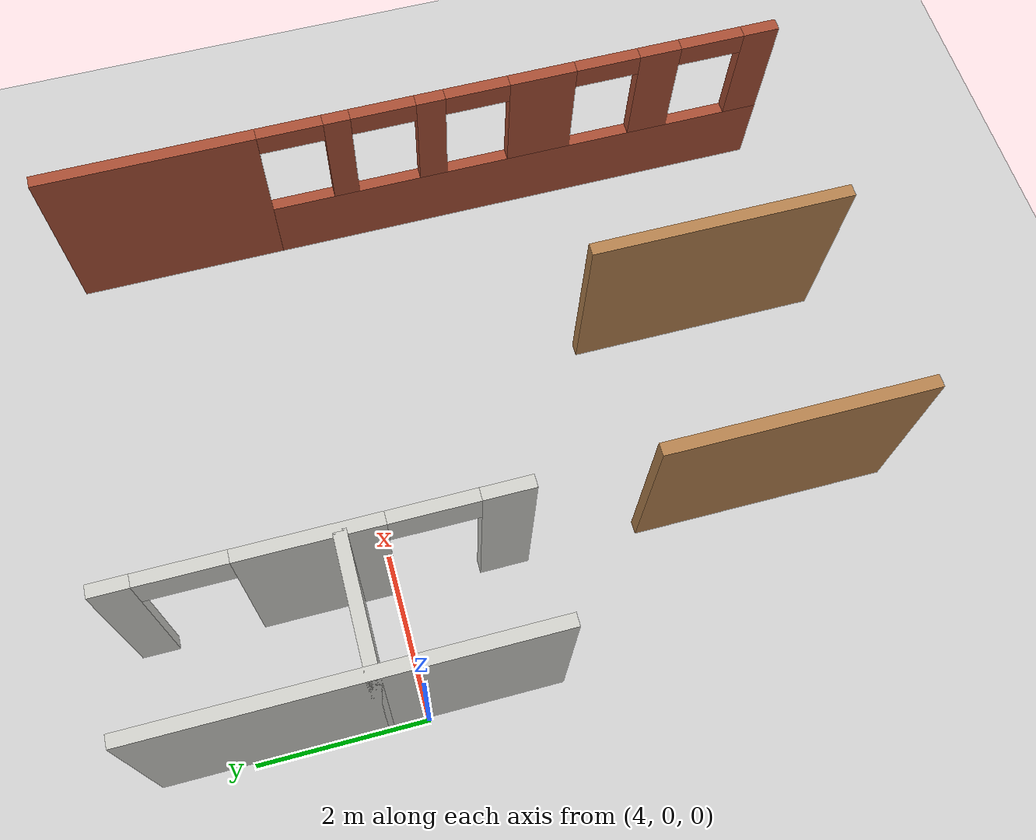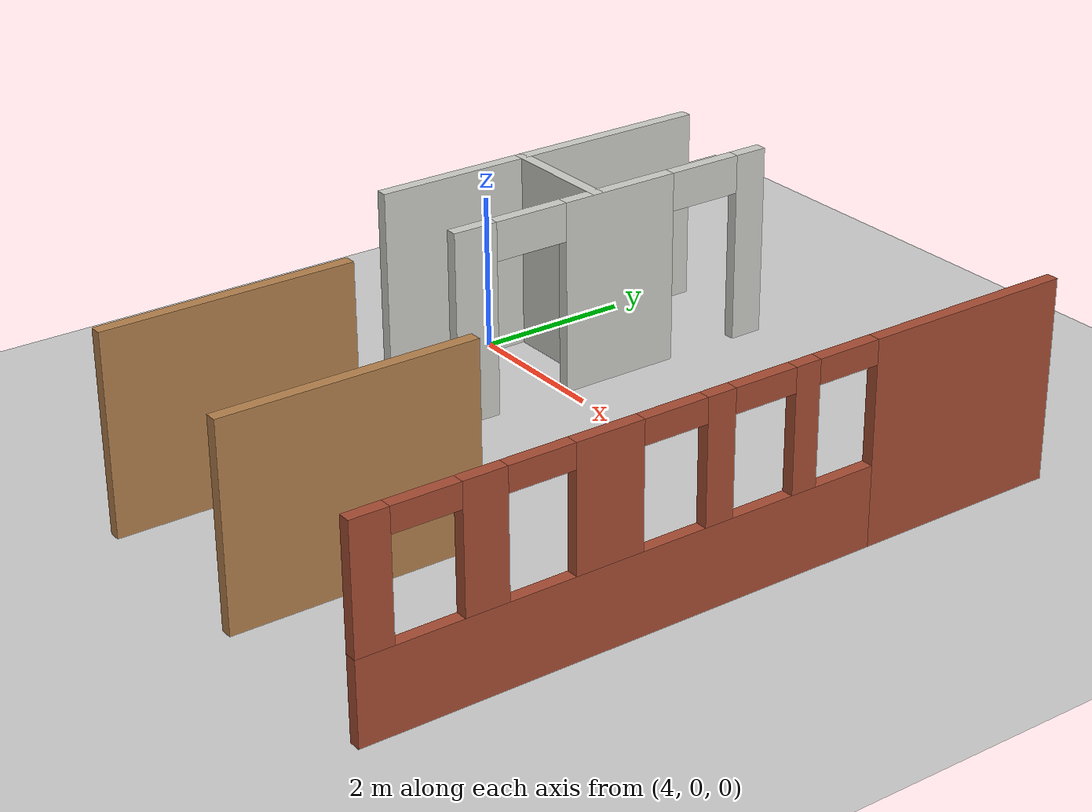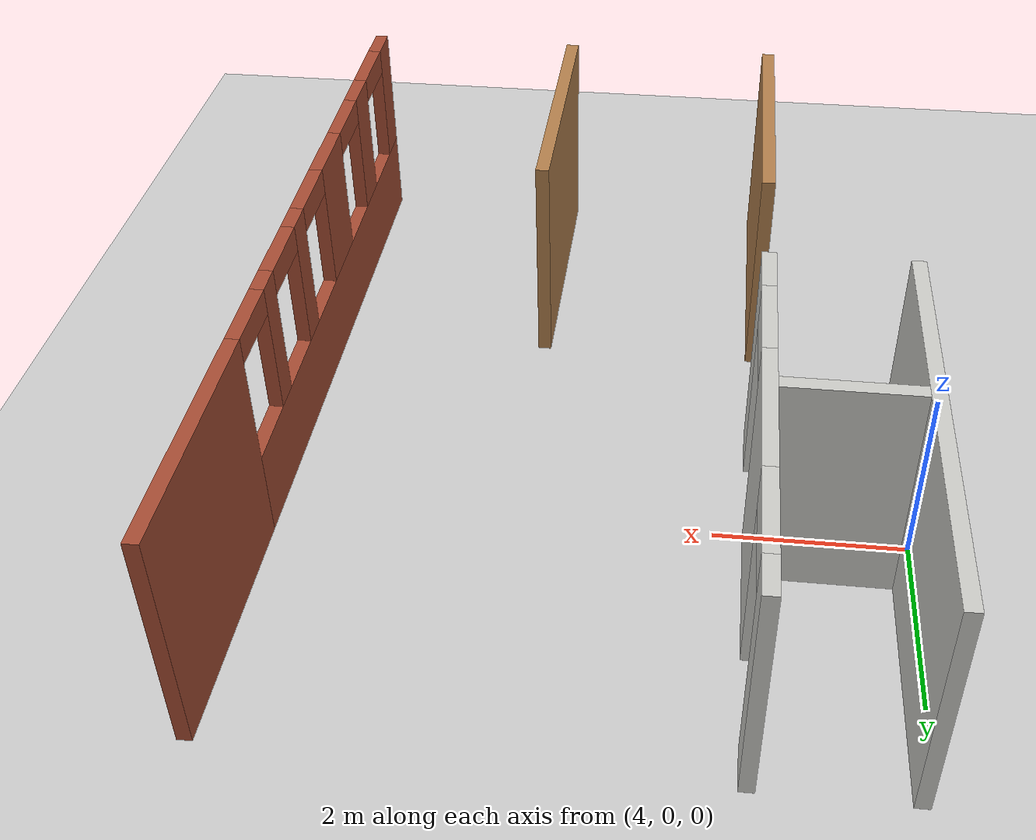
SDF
<sdf version="1.6">
 <world name="default">
  <model name="ground_plane">
   <static>1</static>
   <link name="link">
    <collision name="collision">
     <geometry><plane><normal>0 0 1</normal><size>100 100</size></plane></geometry>
     <surface><friction><ode><mu>100</mu><mu2>50</mu2></ode></friction></surface>
    </collision>
    <visual name="visual">
     <cast_shadows>0</cast_shadows>
     <geometry><plane><normal>0 0 1</normal><size>100 100</size></plane></geometry>
     <material>
      <script><uri>file://media/materials/scripts/gazebo.material</uri><name>Gazebo/Grey</name></script>
     </material>
    </visual>
   </link>
  </model>
  <model name="building">
   <link name="Wall_11">
    <pose>5 -3 0 0 0 -1.5708</pose>
    <visual name="Wall_11_Visual">
     <pose>0 0 1.25 0 -0 0</pose>
     <geometry><box><size>3.15 0.15 2.5</size></box></geometry>
     <material>
      <script><uri>file://media/materials/scripts/gazebo.material</uri><name>Gazebo/Wood</name></script>
      <ambient>0.435294 0.796078 0.67451 1</ambient>
      <shader type="pixel"/>
      <diffuse>1 1 1 1</diffuse>
      <specular>0.2 0.2 0.2 1</specular>
      <emissive>0 0 0 1</emissive>
     </material>
     <meta><layer>0</layer></meta>
    </visual>
    <collision name="Wall_11_Collision">
     <pose>0 0 1.25 0 -0 0</pose>
     <geometry><box><size>3.15 0.15 2.5</size></box></geometry>
     <surface>
      <friction>
       <ode><mu>1</mu><mu2>1</mu2><fdir1>0 0 0</fdir1><slip1>0</slip1><slip2>0</slip2></ode>
       <torsional>
        <coefficient>1</coefficient>
        <patch_radius>0</patch_radius>
        <surface_radius>0</surface_radius>
        <use_patch_radius>1</use_patch_radius>
        <ode><slip>0</slip></ode>
       </torsional>
      </friction>
      <bounce><restitution_coefficient>0</restitution_coefficient><threshold>1e+06</threshold></bounce>
      <contact>
       <collide_without_contact>0</collide_without_contact>
       <collide_without_contact_bitmask>1</collide_without_contact_bitmask>
       <collide_bitmask>1</collide_bitmask>
       <ode>
        <soft_cfm>0</soft_cfm>
        <soft_erp>0.2</soft_erp>
        <kp>1e+13</kp>
        <kd>1</kd>
        <max_vel>0.01</max_vel>
        <min_depth>0</min_depth>
       </ode>
       <bullet>
        <split_impulse>1</split_impulse>
        <split_impulse_penetration_threshold>-0.01</split_impulse_penetration_threshold>
        <soft_cfm>0</soft_cfm>
        <soft_erp>0.2</soft_erp>
        <kp>1e+13</kp>
        <kd>1</kd>
       </bullet>
      </contact>
     </surface>
    </collision>
   </link>
   <link name="Wall_13">
    <pose>2.5 -3 0 0 0 -1.5708</pose>
    <visual name="Wall_13_Visual">
     <pose>0 0 1.25 0 -0 0</pose>
     <geometry><box><size>3.15 0.15 2.5</size></box></geometry>
     <material>
      <script><uri>file://media/materials/scripts/gazebo.material</uri><name>Gazebo/Wood</name></script>
      <ambient>0.435294 0.796078 0.67451 1</ambient>
      <shader type="pixel"/>
      <diffuse>1 1 1 1</diffuse>
      <specular>0.2 0.2 0.2 1</specular>
      <emissive>0 0 0 1</emissive>
     </material>
     <meta><layer>0</layer></meta>
    </visual>
    <collision name="Wall_13_Collision">
     <pose>0 0 1.25 0 -0 0</pose>
     <geometry><box><size>3.15 0.15 2.5</size></box></geometry>
     <surface>
      <friction>
       <ode><mu>1</mu><mu2>1</mu2><fdir1>0 0 0</fdir1><slip1>0</slip1><slip2>0</slip2></ode>
       <torsional>
        <coefficient>1</coefficient>
        <patch_radius>0</patch_radius>
        <surface_radius>0</surface_radius>
        <use_patch_radius>1</use_patch_radius>
        <ode><slip>0</slip></ode>
       </torsional>
      </friction>
      <bounce><restitution_coefficient>0</restitution_coefficient><threshold>1e+06</threshold></bounce>
      <contact>
       <collide_without_contact>0</collide_without_contact>
       <collide_without_contact_bitmask>1</collide_without_contact_bitmask>
       <collide_bitmask>1</collide_bitmask>
       <ode>
        <soft_cfm>0</soft_cfm>
        <soft_erp>0.2</soft_erp>
        <kp>1e+13</kp>
        <kd>1</kd>
        <max_vel>0.01</max_vel>
        <min_depth>0</min_depth>
       </ode>
       <bullet>
        <split_impulse>1</split_impulse>
        <split_impulse_penetration_threshold>-0.01</split_impulse_penetration_threshold>
        <soft_cfm>0</soft_cfm>
        <soft_erp>0.2</soft_erp>
        <kp>1e+13</kp>
        <kd>1</kd>
       </bullet>
      </contact>
     </surface>
    </collision>
   </link>
   <link name="Wall_2">
    <pose>7.5 0 0 0 0 -1.5708</pose>
    <visual name="Wall_2_Visual_1">
     <pose>1.32605 0 0.5 0 -0 0</pose>
     <geometry><box><size>6.4979 0.15 1</size></box></geometry>
     <material>
      <script><uri>file://media/materials/scripts/gazebo.material</uri><name>Gazebo/Bricks</name></script>
      <ambient>0.996078 0.47451 0.0196078 1</ambient>
      <shader type="pixel"/>
      <diffuse>1 1 1 1</diffuse>
      <specular>0.2 0.2 0.2 1</specular>
      <emissive>0 0 0 1</emissive>
     </material>
     <meta><layer>0</layer></meta>
    </visual>
    <visual name="Wall_2_Visual_6">
     <pose>4.34943 0 1.75 0 -0 0</pose>
     <geometry><box><size>0.451131 0.15 1.5</size></box></geometry>
     <material>
      <script><uri>file://media/materials/scripts/gazebo.material</uri><name>Gazebo/Bricks</name></script>
      <ambient>0.996078 0.47451 0.0196078 1</ambient>
      <shader type="pixel"/>
      <diffuse>1 1 1 1</diffuse>
      <specular>0.2 0.2 0.2 1</specular>
      <emissive>0 0 0 1</emissive>
     </material>
     <meta><layer>0</layer></meta>
    </visual>
    <visual name="Wall_2_Visual_9">
     <pose>0.765409 0 2.35 0 -0 0</pose>
     <geometry><box><size>0.8 0.15 0.3</size></box></geometry>
     <material>
      <script><uri>file://media/materials/scripts/gazebo.material</uri><name>Gazebo/Bricks</name></script>
      <ambient>0.996078 0.47451 0.0196078 1</ambient>
      <shader type="pixel"/>
      <diffuse>1 1 1 1</diffuse>
      <specular>0.2 0.2 0.2 1</specular>
      <emissive>0 0 0 1</emissive>
     </material>
     <meta><layer>0</layer></meta>
    </visual>
    <visual name="Wall_2_Visual_8">
     <pose>-0.395093 0 2.35 0 -0 0</pose>
     <geometry><box><size>0.8 0.15 0.3</size></box></geometry>
     <material>
      <script><uri>file://media/materials/scripts/gazebo.material</uri><name>Gazebo/Bricks</name></script>
      <ambient>0.996078 0.47451 0.0196078 1</ambient>
      <shader type="pixel"/>
      <diffuse>1 1 1 1</diffuse>
      <specular>0.2 0.2 0.2 1</specular>
      <emissive>0 0 0 1</emissive>
     </material>
     <meta><layer>0</layer></meta>
    </visual>
    <visual name="Wall_2_Visual_10">
     <pose>2.39992 0 2.35 0 -0 0</pose>
     <geometry><box><size>0.8 0.15 0.3</size></box></geometry>
     <material>
      <script><uri>file://media/materials/scripts/gazebo.material</uri><name>Gazebo/Bricks</name></script>
      <ambient>0.996078 0.47451 0.0196078 1</ambient>
      <shader type="pixel"/>
      <diffuse>1 1 1 1</diffuse>
      <specular>0.2 0.2 0.2 1</specular>
      <emissive>0 0 0 1</emissive>
     </material>
     <meta><layer>0</layer></meta>
    </visual>
    <visual name="Wall_2_Visual_5">
     <pose>3.06189 0 1.75 0 -0 0</pose>
     <geometry><box><size>0.523952 0.15 1.5</size></box></geometry>
     <material>
      <script><uri>file://media/materials/scripts/gazebo.material</uri><name>Gazebo/Bricks</name></script>
      <ambient>0.996078 0.47451 0.0196078 1</ambient>
      <shader type="pixel"/>
      <diffuse>1 1 1 1</diffuse>
      <specular>0.2 0.2 0.2 1</specular>
      <emissive>0 0 0 1</emissive>
     </material>
     <meta><layer>0</layer></meta>
    </visual>
    <visual name="Wall_2_Visual_4">
     <pose>1.58266 0 1.75 0 -0 0</pose>
     <geometry><box><size>0.834509 0.15 1.5</size></box></geometry>
     <material>
      <script><uri>file://media/materials/scripts/gazebo.material</uri><name>Gazebo/Bricks</name></script>
      <ambient>0.996078 0.47451 0.0196078 1</ambient>
      <shader type="pixel"/>
      <diffuse>1 1 1 1</diffuse>
      <specular>0.2 0.2 0.2 1</specular>
      <emissive>0 0 0 1</emissive>
     </material>
     <meta><layer>0</layer></meta>
    </visual>
    <visual name="Wall_2_Visual_7">
     <pose>-1.5229 0 2.35 0 -0 0</pose>
     <geometry><box><size>0.8 0.15 0.3</size></box></geometry>
     <material>
      <script><uri>file://media/materials/scripts/gazebo.material</uri><name>Gazebo/Bricks</name></script>
      <ambient>0.996078 0.47451 0.0196078 1</ambient>
      <shader type="pixel"/>
      <diffuse>1 1 1 1</diffuse>
      <specular>0.2 0.2 0.2 1</specular>
      <emissive>0 0 0 1</emissive>
     </material>
     <meta><layer>0</layer></meta>
    </visual>
    <visual name="Wall_2_Visual_0">
     <pose>-3.24895 0 1.25 0 -0 0</pose>
     <geometry><box><size>2.6521 0.15 2.5</size></box></geometry>
     <material>
      <script><uri>file://media/materials/scripts/gazebo.material</uri><name>Gazebo/Bricks</name></script>
      <ambient>0.996078 0.47451 0.0196078 1</ambient>
      <shader type="pixel"/>
      <diffuse>1 1 1 1</diffuse>
      <specular>0.2 0.2 0.2 1</specular>
      <emissive>0 0 0 1</emissive>
     </material>
     <meta><layer>0</layer></meta>
    </visual>
    <visual name="Wall_2_Visual_3">
     <pose>0.185158 0 1.75 0 -0 0</pose>
     <geometry><box><size>0.360501 0.15 1.5</size></box></geometry>
     <material>
      <script><uri>file://media/materials/scripts/gazebo.material</uri><name>Gazebo/Bricks</name></script>
      <ambient>0.996078 0.47451 0.0196078 1</ambient>
      <shader type="pixel"/>
      <diffuse>1 1 1 1</diffuse>
      <specular>0.2 0.2 0.2 1</specular>
      <emissive>0 0 0 1</emissive>
     </material>
     <meta><layer>0</layer></meta>
    </visual>
    <visual name="Wall_2_Visual_2">
     <pose>-0.958999 0 1.75 0 -0 0</pose>
     <geometry><box><size>0.327811 0.15 1.5</size></box></geometry>
     <material>
      <script><uri>file://media/materials/scripts/gazebo.material</uri><name>Gazebo/Bricks</name></script>
      <ambient>0.996078 0.47451 0.0196078 1</ambient>
      <shader type="pixel"/>
      <diffuse>1 1 1 1</diffuse>
      <specular>0.2 0.2 0.2 1</specular>
      <emissive>0 0 0 1</emissive>
     </material>
     <meta><layer>0</layer></meta>
    </visual>
    <visual name="Wall_2_Visual_11">
     <pose>3.72387 0 2.35 0 -0 0</pose>
     <geometry><box><size>0.8 0.15 0.3</size></box></geometry>
     <material>
      <script><uri>file://media/materials/scripts/gazebo.material</uri><name>Gazebo/Bricks</name></script>
      <ambient>0.996078 0.47451 0.0196078 1</ambient>
      <shader type="pixel"/>
      <diffuse>1 1 1 1</diffuse>
      <specular>0.2 0.2 0.2 1</specular>
      <emissive>0 0 0 1</emissive>
     </material>
     <meta><layer>0</layer></meta>
    </visual>
    <collision name="Wall_2_Collision_5">
     <pose>3.06189 0 1.75 0 -0 0</pose>
     <geometry><box><size>0.523952 0.15 1.5</size></box></geometry>
     <surface>
      <friction>
       <ode><mu>1</mu><mu2>1</mu2><fdir1>0 0 0</fdir1><slip1>0</slip1><slip2>0</slip2></ode>
       <torsional>
        <coefficient>1</coefficient>
        <patch_radius>0</patch_radius>
        <surface_radius>0</surface_radius>
        <use_patch_radius>1</use_patch_radius>
        <ode><slip>0</slip></ode>
       </torsional>
      </friction>
      <bounce><restitution_coefficient>0</restitution_coefficient><threshold>1e+06</threshold></bounce>
      <contact>
       <collide_without_contact>0</collide_without_contact>
       <collide_without_contact_bitmask>1</collide_without_contact_bitmask>
       <collide_bitmask>1</collide_bitmask>
       <ode>
        <soft_cfm>0</soft_cfm>
        <soft_erp>0.2</soft_erp>
        <kp>1e+13</kp>
        <kd>1</kd>
        <max_vel>0.01</max_vel>
        <min_depth>0</min_depth>
       </ode>
       <bullet>
        <split_impulse>1</split_impulse>
        <split_impulse_penetration_threshold>-0.01</split_impulse_penetration_threshold>
        <soft_cfm>0</soft_cfm>
        <soft_erp>0.2</soft_erp>
        <kp>1e+13</kp>
        <kd>1</kd>
       </bullet>
      </contact>
     </surface>
    </collision>
    <collision name="Wall_2_Collision_9">
     <pose>0.765409 0 2.35 0 -0 0</pose>
     <geometry><box><size>0.8 0.15 0.3</size></box></geometry>
     <surface>
      <friction>
       <ode><mu>1</mu><mu2>1</mu2><fdir1>0 0 0</fdir1><slip1>0</slip1><slip2>0</slip2></ode>
       <torsional>
        <coefficient>1</coefficient>
        <patch_radius>0</patch_radius>
        <surface_radius>0</surface_radius>
        <use_patch_radius>1</use_patch_radius>
        <ode><slip>0</slip></ode>
       </torsional>
      </friction>
      <bounce><restitution_coefficient>0</restitution_coefficient><threshold>1e+06</threshold></bounce>
      <contact>
       <collide_without_contact>0</collide_without_contact>
       <collide_without_contact_bitmask>1</collide_without_contact_bitmask>
       <collide_bitmask>1</collide_bitmask>
       <ode>
        <soft_cfm>0</soft_cfm>
        <soft_erp>0.2</soft_erp>
        <kp>1e+13</kp>
        <kd>1</kd>
        <max_vel>0.01</max_vel>
        <min_depth>0</min_depth>
       </ode>
       <bullet>
        <split_impulse>1</split_impulse>
        <split_impulse_penetration_threshold>-0.01</split_impulse_penetration_threshold>
        <soft_cfm>0</soft_cfm>
        <soft_erp>0.2</soft_erp>
        <kp>1e+13</kp>
        <kd>1</kd>
       </bullet>
      </contact>
     </surface>
    </collision>
    <collision name="Wall_2_Collision_8">
     <pose>-0.395093 0 2.35 0 -0 0</pose>
     <geometry><box><size>0.8 0.15 0.3</size></box></geometry>
     <surface>
      <friction>
       <ode><mu>1</mu><mu2>1</mu2><fdir1>0 0 0</fdir1><slip1>0</slip1><slip2>0</slip2></ode>
       <torsional>
        <coefficient>1</coefficient>
        <patch_radius>0</patch_radius>
        <surface_radius>0</surface_radius>
        <use_patch_radius>1</use_patch_radius>
        <ode><slip>0</slip></ode>
       </torsional>
      </friction>
      <bounce><restitution_coefficient>0</restitution_coefficient><threshold>1e+06</threshold></bounce>
      <contact>
       <collide_without_contact>0</collide_without_contact>
       <collide_without_contact_bitmask>1</collide_without_contact_bitmask>
       <collide_bitmask>1</collide_bitmask>
       <ode>
        <soft_cfm>0</soft_cfm>
        <soft_erp>0.2</soft_erp>
        <kp>1e+13</kp>
        <kd>1</kd>
        <max_vel>0.01</max_vel>
        <min_depth>0</min_depth>
       </ode>
       <bullet>
        <split_impulse>1</split_impulse>
        <split_impulse_penetration_threshold>-0.01</split_impulse_penetration_threshold>
        <soft_cfm>0</soft_cfm>
        <soft_erp>0.2</soft_erp>
        <kp>1e+13</kp>
        <kd>1</kd>
       </bullet>
      </contact>
     </surface>
    </collision>
    <collision name="Wall_2_Collision_0">
     <pose>-3.24895 0 1.25 0 -0 0</pose>
     <geometry><box><size>2.6521 0.15 2.5</size></box></geometry>
     <surface>
      <friction>
       <ode><mu>1</mu><mu2>1</mu2><fdir1>0 0 0</fdir1><slip1>0</slip1><slip2>0</slip2></ode>
       <torsional>
        <coefficient>1</coefficient>
        <patch_radius>0</patch_radius>
        <surface_radius>0</surface_radius>
        <use_patch_radius>1</use_patch_radius>
        <ode><slip>0</slip></ode>
       </torsional>
      </friction>
      <bounce><restitution_coefficient>0</restitution_coefficient><threshold>1e+06</threshold></bounce>
      <contact>
       <collide_without_contact>0</collide_without_contact>
       <collide_without_contact_bitmask>1</collide_without_contact_bitmask>
       <collide_bitmask>1</collide_bitmask>
       <ode>
        <soft_cfm>0</soft_cfm>
        <soft_erp>0.2</soft_erp>
        <kp>1e+13</kp>
        <kd>1</kd>
        <max_vel>0.01</max_vel>
        <min_depth>0</min_depth>
       </ode>
       <bullet>
        <split_impulse>1</split_impulse>
        <split_impulse_penetration_threshold>-0.01</split_impulse_penetration_threshold>
        <soft_cfm>0</soft_cfm>
        <soft_erp>0.2</soft_erp>
        <kp>1e+13</kp>
        <kd>1</kd>
       </bullet>
      </contact>
     </surface>
    </collision>
    <collision name="Wall_2_Collision_6">
     <pose>4.34943 0 1.75 0 -0 0</pose>
     <geometry><box><size>0.451131 0.15 1.5</size></box></geometry>
     <surface>
      <friction>
       <ode><mu>1</mu><mu2>1</mu2><fdir1>0 0 0</fdir1><slip1>0</slip1><slip2>0</slip2></ode>
       <torsional>
        <coefficient>1</coefficient>
        <patch_radius>0</patch_radius>
        <surface_radius>0</surface_radius>
        <use_patch_radius>1</use_patch_radius>
        <ode><slip>0</slip></ode>
       </torsional>
      </friction>
      <bounce><restitution_coefficient>0</restitution_coefficient><threshold>1e+06</threshold></bounce>
      <contact>
       <collide_without_contact>0</collide_without_contact>
       <collide_without_contact_bitmask>1</collide_without_contact_bitmask>
       <collide_bitmask>1</collide_bitmask>
       <ode>
        <soft_cfm>0</soft_cfm>
        <soft_erp>0.2</soft_erp>
        <kp>1e+13</kp>
        <kd>1</kd>
        <max_vel>0.01</max_vel>
        <min_depth>0</min_depth>
       </ode>
       <bullet>
        <split_impulse>1</split_impulse>
        <split_impulse_penetration_threshold>-0.01</split_impulse_penetration_threshold>
        <soft_cfm>0</soft_cfm>
        <soft_erp>0.2</soft_erp>
        <kp>1e+13</kp>
        <kd>1</kd>
       </bullet>
      </contact>
     </surface>
    </collision>
    <collision name="Wall_2_Collision_7">
     <pose>-1.5229 0 2.35 0 -0 0</pose>
     <geometry><box><size>0.8 0.15 0.3</size></box></geometry>
     <surface>
      <friction>
       <ode><mu>1</mu><mu2>1</mu2><fdir1>0 0 0</fdir1><slip1>0</slip1><slip2>0</slip2></ode>
       <torsional>
        <coefficient>1</coefficient>
        <patch_radius>0</patch_radius>
        <surface_radius>0</surface_radius>
        <use_patch_radius>1</use_patch_radius>
        <ode><slip>0</slip></ode>
       </torsional>
      </friction>
      <bounce><restitution_coefficient>0</restitution_coefficient><threshold>1e+06</threshold></bounce>
      <contact>
       <collide_without_contact>0</collide_without_contact>
       <collide_without_contact_bitmask>1</collide_without_contact_bitmask>
       <collide_bitmask>1</collide_bitmask>
       <ode>
        <soft_cfm>0</soft_cfm>
        <soft_erp>0.2</soft_erp>
        <kp>1e+13</kp>
        <kd>1</kd>
        <max_vel>0.01</max_vel>
        <min_depth>0</min_depth>
       </ode>
       <bullet>
        <split_impulse>1</split_impulse>
        <split_impulse_penetration_threshold>-0.01</split_impulse_penetration_threshold>
        <soft_cfm>0</soft_cfm>
        <soft_erp>0.2</soft_erp>
        <kp>1e+13</kp>
        <kd>1</kd>
       </bullet>
      </contact>
     </surface>
    </collision>
    <collision name="Wall_2_Collision_11">
     <pose>3.72387 0 2.35 0 -0 0</pose>
     <geometry><box><size>0.8 0.15 0.3</size></box></geometry>
     <surface>
      <friction>
       <ode><mu>1</mu><mu2>1</mu2><fdir1>0 0 0</fdir1><slip1>0</slip1><slip2>0</slip2></ode>
       <torsional>
        <coefficient>1</coefficient>
        <patch_radius>0</patch_radius>
        <surface_radius>0</surface_radius>
        <use_patch_radius>1</use_patch_radius>
        <ode><slip>0</slip></ode>
       </torsional>
      </friction>
      <bounce><restitution_coefficient>0</restitution_coefficient><threshold>1e+06</threshold></bounce>
      <contact>
       <collide_without_contact>0</collide_without_contact>
       <collide_without_contact_bitmask>1</collide_without_contact_bitmask>
       <collide_bitmask>1</collide_bitmask>
       <ode>
        <soft_cfm>0</soft_cfm>
        <soft_erp>0.2</soft_erp>
        <kp>1e+13</kp>
        <kd>1</kd>
        <max_vel>0.01</max_vel>
        <min_depth>0</min_depth>
       </ode>
       <bullet>
        <split_impulse>1</split_impulse>
        <split_impulse_penetration_threshold>-0.01</split_impulse_penetration_threshold>
        <soft_cfm>0</soft_cfm>
        <soft_erp>0.2</soft_erp>
        <kp>1e+13</kp>
        <kd>1</kd>
       </bullet>
      </contact>
     </surface>
    </collision>
    <collision name="Wall_2_Collision_4">
     <pose>1.58266 0 1.75 0 -0 0</pose>
     <geometry><box><size>0.834509 0.15 1.5</size></box></geometry>
     <surface>
      <friction>
       <ode><mu>1</mu><mu2>1</mu2><fdir1>0 0 0</fdir1><slip1>0</slip1><slip2>0</slip2></ode>
       <torsional>
        <coefficient>1</coefficient>
        <patch_radius>0</patch_radius>
        <surface_radius>0</surface_radius>
        <use_patch_radius>1</use_patch_radius>
        <ode><slip>0</slip></ode>
       </torsional>
      </friction>
      <bounce><restitution_coefficient>0</restitution_coefficient><threshold>1e+06</threshold></bounce>
      <contact>
       <collide_without_contact>0</collide_without_contact>
       <collide_without_contact_bitmask>1</collide_without_contact_bitmask>
       <collide_bitmask>1</collide_bitmask>
       <ode>
        <soft_cfm>0</soft_cfm>
        <soft_erp>0.2</soft_erp>
        <kp>1e+13</kp>
        <kd>1</kd>
        <max_vel>0.01</max_vel>
        <min_depth>0</min_depth>
       </ode>
       <bullet>
        <split_impulse>1</split_impulse>
        <split_impulse_penetration_threshold>-0.01</split_impulse_penetration_threshold>
        <soft_cfm>0</soft_cfm>
        <soft_erp>0.2</soft_erp>
        <kp>1e+13</kp>
        <kd>1</kd>
       </bullet>
      </contact>
     </surface>
    </collision>
    <collision name="Wall_2_Collision_10">
     <pose>2.39992 0 2.35 0 -0 0</pose>
     <geometry><box><size>0.8 0.15 0.3</size></box></geometry>
     <surface>
      <friction>
       <ode><mu>1</mu><mu2>1</mu2><fdir1>0 0 0</fdir1><slip1>0</slip1><slip2>0</slip2></ode>
       <torsional>
        <coefficient>1</coefficient>
        <patch_radius>0</patch_radius>
        <surface_radius>0</surface_radius>
        <use_patch_radius>1</use_patch_radius>
        <ode><slip>0</slip></ode>
       </torsional>
      </friction>
      <bounce><restitution_coefficient>0</restitution_coefficient><threshold>1e+06</threshold></bounce>
      <contact>
       <collide_without_contact>0</collide_without_contact>
       <collide_without_contact_bitmask>1</collide_without_contact_bitmask>
       <collide_bitmask>1</collide_bitmask>
       <ode>
        <soft_cfm>0</soft_cfm>
        <soft_erp>0.2</soft_erp>
        <kp>1e+13</kp>
        <kd>1</kd>
        <max_vel>0.01</max_vel>
        <min_depth>0</min_depth>
       </ode>
       <bullet>
        <split_impulse>1</split_impulse>
        <split_impulse_penetration_threshold>-0.01</split_impulse_penetration_threshold>
        <soft_cfm>0</soft_cfm>
        <soft_erp>0.2</soft_erp>
        <kp>1e+13</kp>
        <kd>1</kd>
       </bullet>
      </contact>
     </surface>
    </collision>
    <collision name="Wall_2_Collision_1">
     <pose>1.32605 0 0.5 0 -0 0</pose>
     <geometry><box><size>6.4979 0.15 1</size></box></geometry>
     <surface>
      <friction>
       <ode><mu>1</mu><mu2>1</mu2><fdir1>0 0 0</fdir1><slip1>0</slip1><slip2>0</slip2></ode>
       <torsional>
        <coefficient>1</coefficient>
        <patch_radius>0</patch_radius>
        <surface_radius>0</surface_radius>
        <use_patch_radius>1</use_patch_radius>
        <ode><slip>0</slip></ode>
       </torsional>
      </friction>
      <bounce><restitution_coefficient>0</restitution_coefficient><threshold>1e+06</threshold></bounce>
      <contact>
       <collide_without_contact>0</collide_without_contact>
       <collide_without_contact_bitmask>1</collide_without_contact_bitmask>
       <collide_bitmask>1</collide_bitmask>
       <ode>
        <soft_cfm>0</soft_cfm>
        <soft_erp>0.2</soft_erp>
        <kp>1e+13</kp>
        <kd>1</kd>
        <max_vel>0.01</max_vel>
        <min_depth>0</min_depth>
       </ode>
       <bullet>
        <split_impulse>1</split_impulse>
        <split_impulse_penetration_threshold>-0.01</split_impulse_penetration_threshold>
        <soft_cfm>0</soft_cfm>
        <soft_erp>0.2</soft_erp>
        <kp>1e+13</kp>
        <kd>1</kd>
       </bullet>
      </contact>
     </surface>
    </collision>
    <collision name="Wall_2_Collision_3">
     <pose>0.185158 0 1.75 0 -0 0</pose>
     <geometry><box><size>0.360501 0.15 1.5</size></box></geometry>
     <surface>
      <friction>
       <ode><mu>1</mu><mu2>1</mu2><fdir1>0 0 0</fdir1><slip1>0</slip1><slip2>0</slip2></ode>
       <torsional>
        <coefficient>1</coefficient>
        <patch_radius>0</patch_radius>
        <surface_radius>0</surface_radius>
        <use_patch_radius>1</use_patch_radius>
        <ode><slip>0</slip></ode>
       </torsional>
      </friction>
      <bounce><restitution_coefficient>0</restitution_coefficient><threshold>1e+06</threshold></bounce>
      <contact>
       <collide_without_contact>0</collide_without_contact>
       <collide_without_contact_bitmask>1</collide_without_contact_bitmask>
       <collide_bitmask>1</collide_bitmask>
       <ode>
        <soft_cfm>0</soft_cfm>
        <soft_erp>0.2</soft_erp>
        <kp>1e+13</kp>
        <kd>1</kd>
        <max_vel>0.01</max_vel>
        <min_depth>0</min_depth>
       </ode>
       <bullet>
        <split_impulse>1</split_impulse>
        <split_impulse_penetration_threshold>-0.01</split_impulse_penetration_threshold>
        <soft_cfm>0</soft_cfm>
        <soft_erp>0.2</soft_erp>
        <kp>1e+13</kp>
        <kd>1</kd>
       </bullet>
      </contact>
     </surface>
    </collision>
    <collision name="Wall_2_Collision_2">
     <pose>-0.958999 0 1.75 0 -0 0</pose>
     <geometry><box><size>0.327811 0.15 1.5</size></box></geometry>
     <surface>
      <friction>
       <ode><mu>1</mu><mu2>1</mu2><fdir1>0 0 0</fdir1><slip1>0</slip1><slip2>0</slip2></ode>
       <torsional>
        <coefficient>1</coefficient>
        <patch_radius>0</patch_radius>
        <surface_radius>0</surface_radius>
        <use_patch_radius>1</use_patch_radius>
        <ode><slip>0</slip></ode>
       </torsional>
      </friction>
      <bounce><restitution_coefficient>0</restitution_coefficient><threshold>1e+06</threshold></bounce>
      <contact>
       <collide_without_contact>0</collide_without_contact>
       <collide_without_contact_bitmask>1</collide_without_contact_bitmask>
       <collide_bitmask>1</collide_bitmask>
       <ode>
        <soft_cfm>0</soft_cfm>
        <soft_erp>0.2</soft_erp>
        <kp>1e+13</kp>
        <kd>1</kd>
        <max_vel>0.01</max_vel>
        <min_depth>0</min_depth>
       </ode>
       <bullet>
        <split_impulse>1</split_impulse>
        <split_impulse_penetration_threshold>-0.01</split_impulse_penetration_threshold>
        <soft_cfm>0</soft_cfm>
        <soft_erp>0.2</soft_erp>
        <kp>1e+13</kp>
        <kd>1</kd>
       </bullet>
      </contact>
     </surface>
    </collision>
   </link>
   <link name="Wall_20">
    <pose>2.5 2.25 0 0 -0 1.5708</pose>
    <visual name="Wall_20_Visual_4">
     <pose>1.38142 0 2.25 0 -0 0</pose>
     <geometry><box><size>1 0.15 0.5</size></box></geometry>
     <material>
      <script><uri>file://media/materials/scripts/gazebo.material</uri><name>Gazebo/CeilingTiled</name></script>
      <ambient>1 0.764706 0.305882 1</ambient>
      <shader type="pixel"/>
      <diffuse>1 1 1 1</diffuse>
      <specular>0 0 0 1</specular>
      <emissive>0 0 0 1</emissive>
     </material>
     <meta><layer>0</layer></meta>
    </visual>
    <visual name="Wall_20_Visual_2">
     <pose>2.10321 0 1.25 0 -0 0</pose>
     <geometry><box><size>0.443579 0.15 2.5</size></box></geometry>
     <material>
      <script><uri>file://media/materials/scripts/gazebo.material</uri><name>Gazebo/CeilingTiled</name></script>
      <ambient>1 0.764706 0.305882 1</ambient>
      <shader type="pixel"/>
      <diffuse>1 1 1 1</diffuse>
      <specular>0 0 0 1</specular>
      <emissive>0 0 0 1</emissive>
     </material>
     <meta><layer>0</layer></meta>
    </visual>
    <visual name="Wall_20_Visual_3">
     <pose>-1.23379 0 2.25 0 -0 0</pose>
     <geometry><box><size>1 0.15 0.5</size></box></geometry>
     <material>
      <script><uri>file://media/materials/scripts/gazebo.material</uri><name>Gazebo/CeilingTiled</name></script>
      <ambient>1 0.764706 0.305882 1</ambient>
      <shader type="pixel"/>
      <diffuse>1 1 1 1</diffuse>
      <specular>0 0 0 1</specular>
      <emissive>0 0 0 1</emissive>
     </material>
     <meta><layer>0</layer></meta>
    </visual>
    <visual name="Wall_20_Visual_0">
     <pose>-2.0294 0 1.25 0 -0 0</pose>
     <geometry><box><size>0.591206 0.15 2.5</size></box></geometry>
     <material>
      <script><uri>file://media/materials/scripts/gazebo.material</uri><name>Gazebo/CeilingTiled</name></script>
      <ambient>1 0.764706 0.305882 1</ambient>
      <shader type="pixel"/>
      <diffuse>1 1 1 1</diffuse>
      <specular>0 0 0 1</specular>
      <emissive>0 0 0 1</emissive>
     </material>
     <meta><layer>0</layer></meta>
    </visual>
    <visual name="Wall_20_Visual_1">
     <pose>0.073813 0 1.25 0 -0 0</pose>
     <geometry><box><size>1.61521 0.15 2.5</size></box></geometry>
     <material>
      <script><uri>file://media/materials/scripts/gazebo.material</uri><name>Gazebo/CeilingTiled</name></script>
      <ambient>1 0.764706 0.305882 1</ambient>
      <shader type="pixel"/>
      <diffuse>1 1 1 1</diffuse>
      <specular>0 0 0 1</specular>
      <emissive>0 0 0 1</emissive>
     </material>
     <meta><layer>0</layer></meta>
    </visual>
    <collision name="Wall_20_Collision_4">
     <pose>1.38142 0 2.25 0 -0 0</pose>
     <geometry><box><size>1 0.15 0.5</size></box></geometry>
     <surface>
      <friction>
       <ode><mu>1</mu><mu2>1</mu2><fdir1>0 0 0</fdir1><slip1>0</slip1><slip2>0</slip2></ode>
       <torsional>
        <coefficient>1</coefficient>
        <patch_radius>0</patch_radius>
        <surface_radius>0</surface_radius>
        <use_patch_radius>1</use_patch_radius>
        <ode><slip>0</slip></ode>
       </torsional>
      </friction>
      <bounce><restitution_coefficient>0</restitution_coefficient><threshold>1e+06</threshold></bounce>
      <contact>
       <collide_without_contact>0</collide_without_contact>
       <collide_without_contact_bitmask>1</collide_without_contact_bitmask>
       <collide_bitmask>1</collide_bitmask>
       <ode>
        <soft_cfm>0</soft_cfm>
        <soft_erp>0.2</soft_erp>
        <kp>1e+13</kp>
        <kd>1</kd>
        <max_vel>0.01</max_vel>
        <min_depth>0</min_depth>
       </ode>
       <bullet>
        <split_impulse>1</split_impulse>
        <split_impulse_penetration_threshold>-0.01</split_impulse_penetration_threshold>
        <soft_cfm>0</soft_cfm>
        <soft_erp>0.2</soft_erp>
        <kp>1e+13</kp>
        <kd>1</kd>
       </bullet>
      </contact>
     </surface>
    </collision>
    <collision name="Wall_20_Collision_3">
     <pose>-1.23379 0 2.25 0 -0 0</pose>
     <geometry><box><size>1 0.15 0.5</size></box></geometry>
     <surface>
      <friction>
       <ode><mu>1</mu><mu2>1</mu2><fdir1>0 0 0</fdir1><slip1>0</slip1><slip2>0</slip2></ode>
       <torsional>
        <coefficient>1</coefficient>
        <patch_radius>0</patch_radius>
        <surface_radius>0</surface_radius>
        <use_patch_radius>1</use_patch_radius>
        <ode><slip>0</slip></ode>
       </torsional>
      </friction>
      <bounce><restitution_coefficient>0</restitution_coefficient><threshold>1e+06</threshold></bounce>
      <contact>
       <collide_without_contact>0</collide_without_contact>
       <collide_without_contact_bitmask>1</collide_without_contact_bitmask>
       <collide_bitmask>1</collide_bitmask>
       <ode>
        <soft_cfm>0</soft_cfm>
        <soft_erp>0.2</soft_erp>
        <kp>1e+13</kp>
        <kd>1</kd>
        <max_vel>0.01</max_vel>
        <min_depth>0</min_depth>
       </ode>
       <bullet>
        <split_impulse>1</split_impulse>
        <split_impulse_penetration_threshold>-0.01</split_impulse_penetration_threshold>
        <soft_cfm>0</soft_cfm>
        <soft_erp>0.2</soft_erp>
        <kp>1e+13</kp>
        <kd>1</kd>
       </bullet>
      </contact>
     </surface>
    </collision>
    <collision name="Wall_20_Collision_0">
     <pose>-2.0294 0 1.25 0 -0 0</pose>
     <geometry><box><size>0.591206 0.15 2.5</size></box></geometry>
     <surface>
      <friction>
       <ode><mu>1</mu><mu2>1</mu2><fdir1>0 0 0</fdir1><slip1>0</slip1><slip2>0</slip2></ode>
       <torsional>
        <coefficient>1</coefficient>
        <patch_radius>0</patch_radius>
        <surface_radius>0</surface_radius>
        <use_patch_radius>1</use_patch_radius>
        <ode><slip>0</slip></ode>
       </torsional>
      </friction>
      <bounce><restitution_coefficient>0</restitution_coefficient><threshold>1e+06</threshold></bounce>
      <contact>
       <collide_without_contact>0</collide_without_contact>
       <collide_without_contact_bitmask>1</collide_without_contact_bitmask>
       <collide_bitmask>1</collide_bitmask>
       <ode>
        <soft_cfm>0</soft_cfm>
        <soft_erp>0.2</soft_erp>
        <kp>1e+13</kp>
        <kd>1</kd>
        <max_vel>0.01</max_vel>
        <min_depth>0</min_depth>
       </ode>
       <bullet>
        <split_impulse>1</split_impulse>
        <split_impulse_penetration_threshold>-0.01</split_impulse_penetration_threshold>
        <soft_cfm>0</soft_cfm>
        <soft_erp>0.2</soft_erp>
        <kp>1e+13</kp>
        <kd>1</kd>
       </bullet>
      </contact>
     </surface>
    </collision>
    <collision name="Wall_20_Collision_2">
     <pose>2.10321 0 1.25 0 -0 0</pose>
     <geometry><box><size>0.443579 0.15 2.5</size></box></geometry>
     <surface>
      <friction>
       <ode><mu>1</mu><mu2>1</mu2><fdir1>0 0 0</fdir1><slip1>0</slip1><slip2>0</slip2></ode>
       <torsional>
        <coefficient>1</coefficient>
        <patch_radius>0</patch_radius>
        <surface_radius>0</surface_radius>
        <use_patch_radius>1</use_patch_radius>
        <ode><slip>0</slip></ode>
       </torsional>
      </friction>
      <bounce><restitution_coefficient>0</restitution_coefficient><threshold>1e+06</threshold></bounce>
      <contact>
       <collide_without_contact>0</collide_without_contact>
       <collide_without_contact_bitmask>1</collide_without_contact_bitmask>
       <collide_bitmask>1</collide_bitmask>
       <ode>
        <soft_cfm>0</soft_cfm>
        <soft_erp>0.2</soft_erp>
        <kp>1e+13</kp>
        <kd>1</kd>
        <max_vel>0.01</max_vel>
        <min_depth>0</min_depth>
       </ode>
       <bullet>
        <split_impulse>1</split_impulse>
        <split_impulse_penetration_threshold>-0.01</split_impulse_penetration_threshold>
        <soft_cfm>0</soft_cfm>
        <soft_erp>0.2</soft_erp>
        <kp>1e+13</kp>
        <kd>1</kd>
       </bullet>
      </contact>
     </surface>
    </collision>
    <collision name="Wall_20_Collision_1">
     <pose>0.073813 0 1.25 0 -0 0</pose>
     <geometry><box><size>1.61521 0.15 2.5</size></box></geometry>
     <surface>
      <friction>
       <ode><mu>1</mu><mu2>1</mu2><fdir1>0 0 0</fdir1><slip1>0</slip1><slip2>0</slip2></ode>
       <torsional>
        <coefficient>1</coefficient>
        <patch_radius>0</patch_radius>
        <surface_radius>0</surface_radius>
        <use_patch_radius>1</use_patch_radius>
        <ode><slip>0</slip></ode>
       </torsional>
      </friction>
      <bounce><restitution_coefficient>0</restitution_coefficient><threshold>1e+06</threshold></bounce>
      <contact>
       <collide_without_contact>0</collide_without_contact>
       <collide_without_contact_bitmask>1</collide_without_contact_bitmask>
       <collide_bitmask>1</collide_bitmask>
       <ode>
        <soft_cfm>0</soft_cfm>
        <soft_erp>0.2</soft_erp>
        <kp>1e+13</kp>
        <kd>1</kd>
        <max_vel>0.01</max_vel>
        <min_depth>0</min_depth>
       </ode>
       <bullet>
        <split_impulse>1</split_impulse>
        <split_impulse_penetration_threshold>-0.01</split_impulse_penetration_threshold>
        <soft_cfm>0</soft_cfm>
        <soft_erp>0.2</soft_erp>
        <kp>1e+13</kp>
        <kd>1</kd>
       </bullet>
      </contact>
     </surface>
    </collision>
   </link>
   <link name="Wall_24">
    <pose>1 2.25 0 0 -0 1.5708</pose>
    <visual name="Wall_24_Visual">
     <pose>0 0 1.25 0 -0 0</pose>
     <geometry><box><size>4.65 0.15 2.5</size></box></geometry>
     <material>
      <script><uri>file://media/materials/scripts/gazebo.material</uri><name>Gazebo/CeilingTiled</name></script>
      <ambient>1 0.764706 0.305882 1</ambient>
      <shader type="pixel"/>
      <diffuse>1 1 1 1</diffuse>
      <specular>0 0 0 1</specular>
      <emissive>0 0 0 1</emissive>
     </material>
     <meta><layer>0</layer></meta>
    </visual>
    <collision name="Wall_24_Collision">
     <pose>0 0 1.25 0 -0 0</pose>
     <geometry><box><size>4.65 0.15 2.5</size></box></geometry>
     <surface>
      <friction>
       <ode><mu>1</mu><mu2>1</mu2><fdir1>0 0 0</fdir1><slip1>0</slip1><slip2>0</slip2></ode>
       <torsional>
        <coefficient>1</coefficient>
        <patch_radius>0</patch_radius>
        <surface_radius>0</surface_radius>
        <use_patch_radius>1</use_patch_radius>
        <ode><slip>0</slip></ode>
       </torsional>
      </friction>
      <bounce><restitution_coefficient>0</restitution_coefficient><threshold>1e+06</threshold></bounce>
      <contact>
       <collide_without_contact>0</collide_without_contact>
       <collide_without_contact_bitmask>1</collide_without_contact_bitmask>
       <collide_bitmask>1</collide_bitmask>
       <ode>
        <soft_cfm>0</soft_cfm>
        <soft_erp>0.2</soft_erp>
        <kp>1e+13</kp>
        <kd>1</kd>
        <max_vel>0.01</max_vel>
        <min_depth>0</min_depth>
       </ode>
       <bullet>
        <split_impulse>1</split_impulse>
        <split_impulse_penetration_threshold>-0.01</split_impulse_penetration_threshold>
        <soft_cfm>0</soft_cfm>
        <soft_erp>0.2</soft_erp>
        <kp>1e+13</kp>
        <kd>1</kd>
       </bullet>
      </contact>
     </surface>
    </collision>
   </link>
   <link name="Wall_26">
    <pose>1.75 2 0 0 -0 0</pose>
    <visual name="Wall_26_Visual">
     <pose>0 0 1.25 0 -0 0</pose>
     <geometry><box><size>1.65 0.15 2.5</size></box></geometry>
     <material>
      <script><uri>file://media/materials/scripts/gazebo.material</uri><name>Gazebo/CeilingTiled</name></script>
      <ambient>1 0.764706 0.305882 1</ambient>
      <shader type="pixel"/>
      <diffuse>1 1 1 1</diffuse>
      <specular>0 0 0 1</specular>
      <emissive>0 0 0 1</emissive>
     </material>
     <meta><layer>0</layer></meta>
    </visual>
    <collision name="Wall_26_Collision">
     <pose>0 0 1.25 0 -0 0</pose>
     <geometry><box><size>1.65 0.15 2.5</size></box></geometry>
     <surface>
      <friction>
       <ode><mu>1</mu><mu2>1</mu2><fdir1>0 0 0</fdir1><slip1>0</slip1><slip2>0</slip2></ode>
       <torsional>
        <coefficient>1</coefficient>
        <patch_radius>0</patch_radius>
        <surface_radius>0</surface_radius>
        <use_patch_radius>1</use_patch_radius>
        <ode><slip>0</slip></ode>
       </torsional>
      </friction>
      <bounce><restitution_coefficient>0</restitution_coefficient><threshold>1e+06</threshold></bounce>
      <contact>
       <collide_without_contact>0</collide_without_contact>
       <collide_without_contact_bitmask>1</collide_without_contact_bitmask>
       <collide_bitmask>1</collide_bitmask>
       <ode>
        <soft_cfm>0</soft_cfm>
        <soft_erp>0.2</soft_erp>
        <kp>1e+13</kp>
        <kd>1</kd>
        <max_vel>0.01</max_vel>
        <min_depth>0</min_depth>
       </ode>
       <bullet>
        <split_impulse>1</split_impulse>
        <split_impulse_penetration_threshold>-0.01</split_impulse_penetration_threshold>
        <soft_cfm>0</soft_cfm>
        <soft_erp>0.2</soft_erp>
        <kp>1e+13</kp>
        <kd>1</kd>
       </bullet>
      </contact>
     </surface>
    </collision>
   </link>
   <static>1</static>
   <pose>3.1187 -1.5263 0 0 -0 0</pose>
  </model>
 </world>
</sdf>
